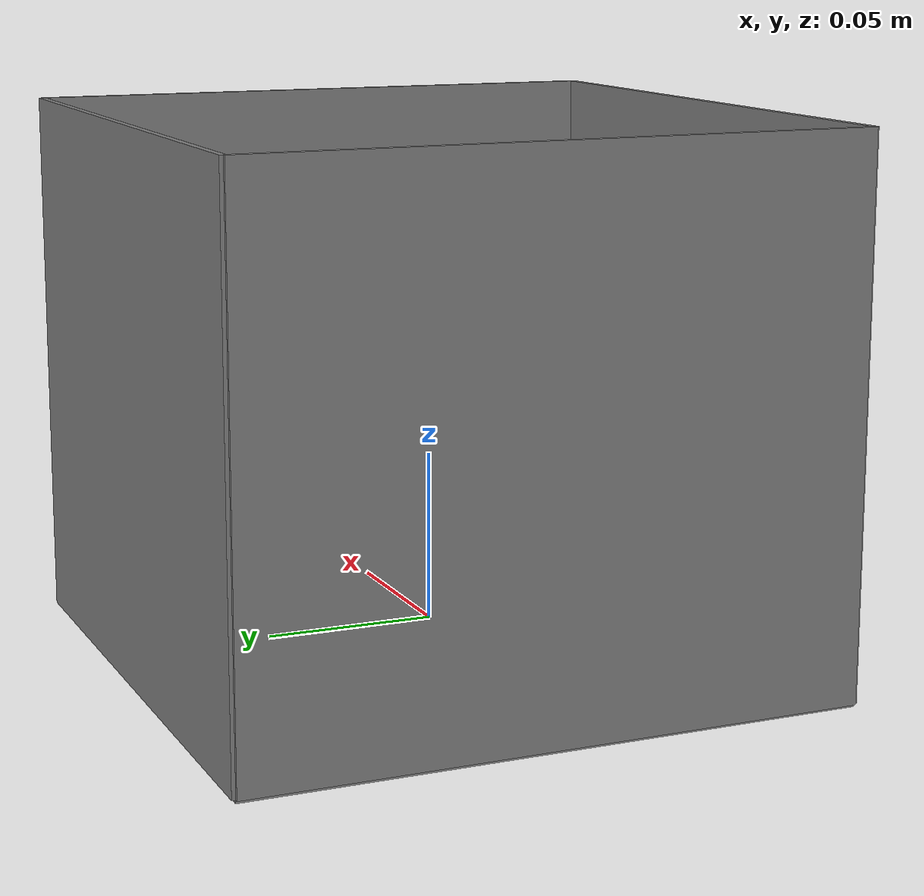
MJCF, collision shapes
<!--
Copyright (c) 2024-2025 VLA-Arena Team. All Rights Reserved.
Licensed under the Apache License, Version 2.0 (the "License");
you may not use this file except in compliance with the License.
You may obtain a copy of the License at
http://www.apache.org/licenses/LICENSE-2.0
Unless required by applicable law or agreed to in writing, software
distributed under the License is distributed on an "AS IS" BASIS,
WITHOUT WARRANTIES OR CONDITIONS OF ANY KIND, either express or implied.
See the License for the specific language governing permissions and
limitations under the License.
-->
<mujoco model="giftbox">
  <compiler angle="radian"/>
  <default>
    <default class="visual">
      <geom group="1" conaffinity="0" contype="0"/>
    </default>
    <default class="collision">
      <geom type="box" mass="1" group="0" friction="1" solref="0.001 1"/>
    </default>
    <default class="keypoint">
      <site type="sphere" size="0.01" group="3" rgba="1 0 0 1"/>
    </default>
    <default class="placepoint">
      <site type="sphere" size="0.01" group="2" rgba="0 0 1 0"/>
    </default>
  </default>
  <asset>
    <texture name="box" file="./box.png" type="2d"/>
    <material name="body" texture="box" specular="1" shininess="1"/>
    <mesh name="body" file="./giftbox.obj" scale="0.1 0.1 0.1"/>
  </asset>
  <worldbody>
  <body>
    <body euler="1.57 0 0" pos="0 0 0.09" name="object" >
      <geom type="mesh" mesh="body" material="body" mass="0.1" class="visual"/>
      <geom class="collision" pos="0.09 -0.02 -0.0" size="0.001 0.08 0.09"/>
      <geom class="collision" pos="-0.09 -0.02 -0.0" size="0.001 0.08 0.09"/>
      <geom class="collision" pos="0.0 -0.02 0.09" size="0.001 0.08 0.09" euler="0 1.57 0"/>
      <geom class="collision" pos="0.0 -0.02 -0.09" size="0.001 0.08 0.09" euler="0 1.57 0"/>
      <geom class="collision" pos="0.0 -0.1 0.0" size="0.001 0.09 0.09" euler="1.57 1.57 0"/>
      </body>
      <site class="keypoint" pos="0.09 0.06 0.09" name="top_site" />
      <site class="keypoint" pos="-0.09 -0.1 -0.09" name="bottom_site" />

      <site class="placepoint" pos="0 0.2 0" name="horizontal_radius_site"/>
    </body>
  </worldbody>
</mujoco>
